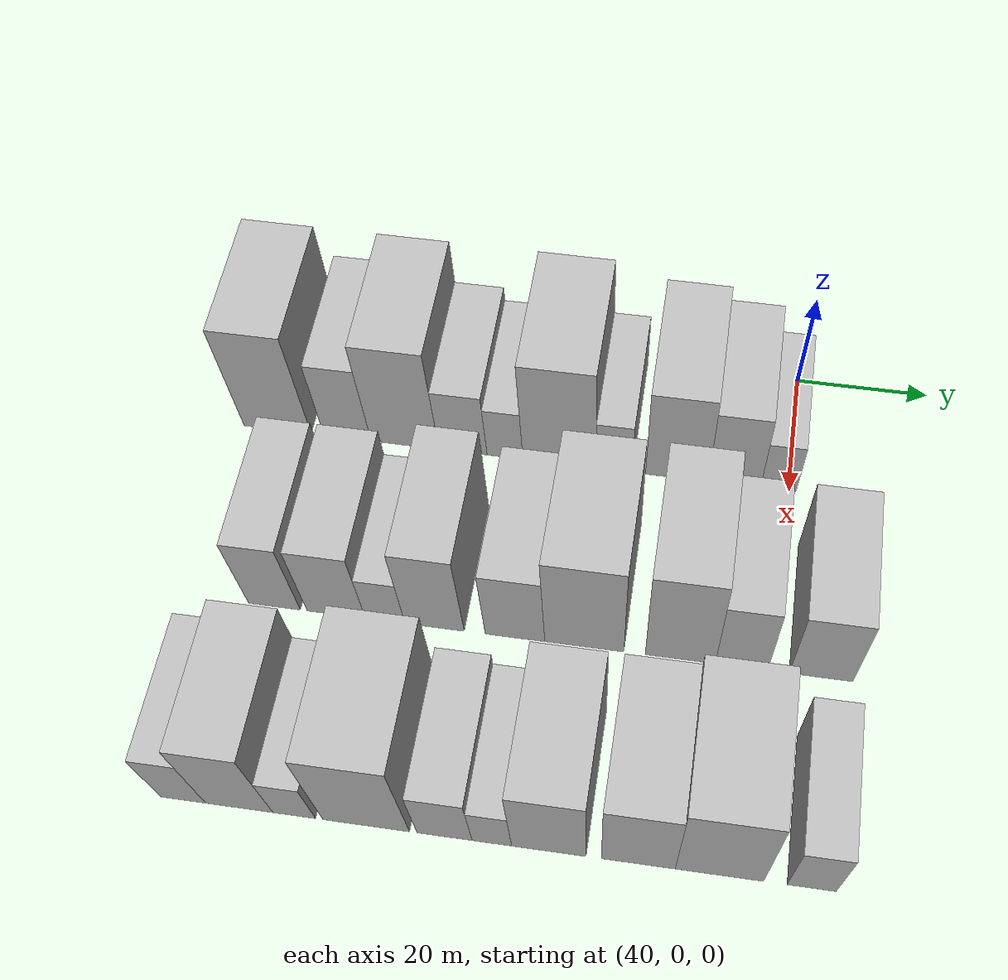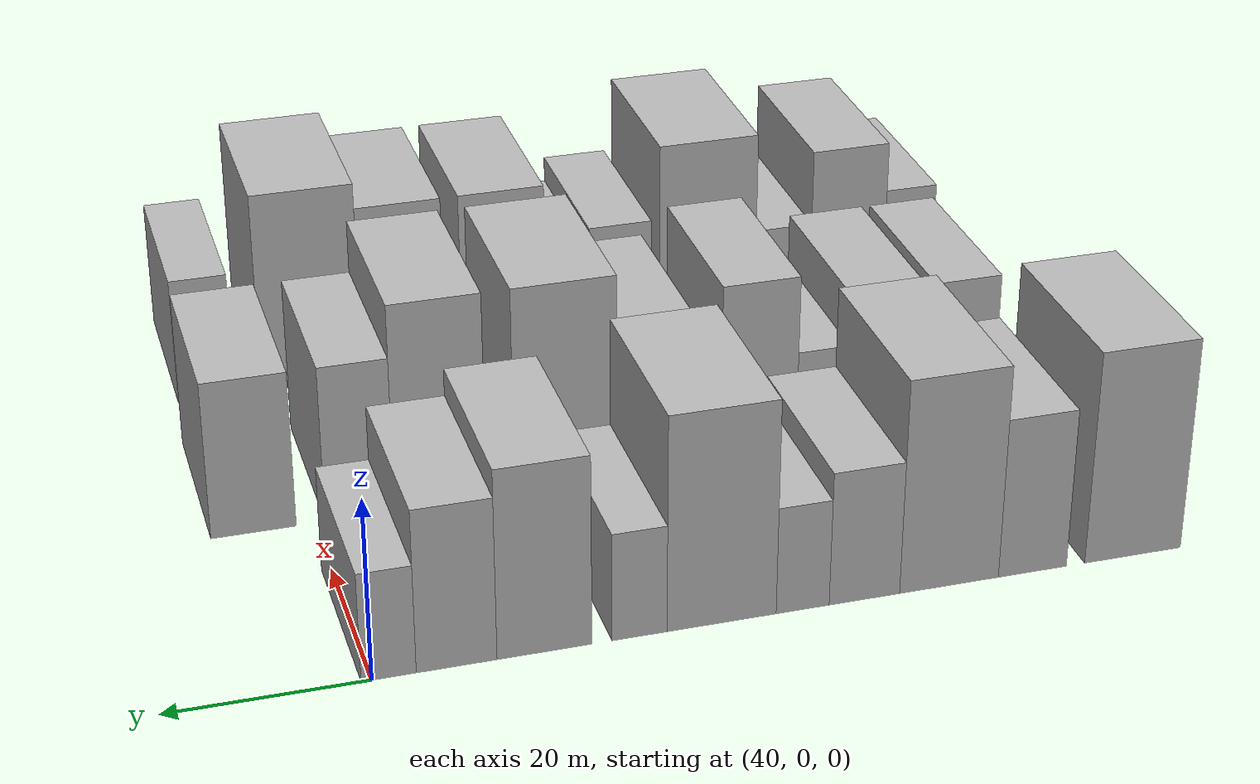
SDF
<sdf version="1.6">
 <world name="default">
  <model name="building_31">
   <static>1</static>
   <pose>50.0000 -78.0999 0 0.000000 0.000000 0.000000</pose>
   <link name="link">
    <pose>0 0 12.00 0 0 0</pose>
    <collision name="collision"><geometry><box><size>20.0000 10.5155 24.0000</size></box></geometry></collision>
    <visual name="visual">
     <cast_shadows>0</cast_shadows>
     <geometry><box><size>20.0000 10.5155 24.0000</size></box></geometry>
     <material>
      <script>
       <uri>model://HANNAS_wall/materials/scripts</uri>
       <uri>model://HANNAS_wall/materials/textures</uri>
       <name>vrc/HANNAS_wall</name>
      </script>
     </material>
    </visual>
   </link>
  </model>
  <model name="building_32">
   <static>1</static>
   <pose>50.0000 -67.1724 0 0.000000 0.000000 0.000000</pose>
   <link name="link">
    <pose>0 0 9.00 0 0 0</pose>
    <collision name="collision"><geometry><box><size>20.0000 7.3393 18.0000</size></box></geometry></collision>
    <visual name="visual">
     <cast_shadows>0</cast_shadows>
     <geometry><box><size>20.0000 7.3393 18.0000</size></box></geometry>
     <material>
      <script>
       <uri>model://HANNAS_wall/materials/scripts</uri>
       <uri>model://HANNAS_wall/materials/textures</uri>
       <name>vrc/HANNAS_wall</name>
      </script>
     </material>
    </visual>
   </link>
  </model>
  <model name="building_33">
   <static>1</static>
   <pose>50.0000 -58.2505 0 0.000000 0.000000 0.000000</pose>
   <link name="link">
    <pose>0 0 12.00 0 0 0</pose>
    <collision name="collision"><geometry><box><size>20.0000 10.5045 24.0000</size></box></geometry></collision>
    <visual name="visual">
     <cast_shadows>0</cast_shadows>
     <geometry><box><size>20.0000 10.5045 24.0000</size></box></geometry>
     <material>
      <script>
       <uri>model://HANNAS_wall/materials/scripts</uri>
       <uri>model://HANNAS_wall/materials/textures</uri>
       <name>vrc/HANNAS_wall</name>
      </script>
     </material>
    </visual>
   </link>
  </model>
  <model name="building_34">
   <static>1</static>
   <pose>50.0000 -49.3112 0 0.000000 0.000000 0.000000</pose>
   <link name="link">
    <pose>0 0 7.50 0 0 0</pose>
    <collision name="collision"><geometry><box><size>20.0000 7.3740 15.0000</size></box></geometry></collision>
    <visual name="visual">
     <cast_shadows>0</cast_shadows>
     <geometry><box><size>20.0000 7.3740 15.0000</size></box></geometry>
     <material>
      <script>
       <uri>model://HANNAS_wall/materials/scripts</uri>
       <uri>model://HANNAS_wall/materials/textures</uri>
       <name>vrc/HANNAS_wall</name>
      </script>
     </material>
    </visual>
   </link>
  </model>
  <model name="building_35">
   <static>1</static>
   <pose>50.0000 -42.8820 0 0.000000 0.000000 0.000000</pose>
   <link name="link">
    <pose>0 0 6.00 0 0 0</pose>
    <collision name="collision"><geometry><box><size>20.0000 5.4845 12.0000</size></box></geometry></collision>
    <visual name="visual">
     <cast_shadows>0</cast_shadows>
     <geometry><box><size>20.0000 5.4845 12.0000</size></box></geometry>
     <material>
      <script>
       <uri>model://HANNAS_wall/materials/scripts</uri>
       <uri>model://HANNAS_wall/materials/textures</uri>
       <name>vrc/HANNAS_wall</name>
      </script>
     </material>
    </visual>
   </link>
  </model>
  <model name="building_36">
   <static>1</static>
   <pose>50.0000 -34.5786 0 0.000000 0.000000 0.000000</pose>
   <link name="link">
    <pose>0 0 12.00 0 0 0</pose>
    <collision name="collision"><geometry><box><size>20.0000 11.1223 24.0000</size></box></geometry></collision>
    <visual name="visual">
     <cast_shadows>0</cast_shadows>
     <geometry><box><size>20.0000 11.1223 24.0000</size></box></geometry>
     <material>
      <script>
       <uri>model://HANNAS_wall/materials/scripts</uri>
       <uri>model://HANNAS_wall/materials/textures</uri>
       <name>vrc/HANNAS_wall</name>
      </script>
     </material>
    </visual>
   </link>
  </model>
  <model name="building_37">
   <static>1</static>
   <pose>50.0000 -26.2614 0 0.000000 0.000000 0.000000</pose>
   <link name="link">
    <pose>0 0 6.00 0 0 0</pose>
    <collision name="collision"><geometry><box><size>20.0000 5.5120 12.0000</size></box></geometry></collision>
    <visual name="visual">
     <cast_shadows>0</cast_shadows>
     <geometry><box><size>20.0000 5.5120 12.0000</size></box></geometry>
     <material>
      <script>
       <uri>model://HANNAS_wall/materials/scripts</uri>
       <uri>model://HANNAS_wall/materials/textures</uri>
       <name>vrc/HANNAS_wall</name>
      </script>
     </material>
    </visual>
   </link>
  </model>
  <model name="building_38">
   <static>1</static>
   <pose>50.0000 -16.8164 0 0.000000 0.000000 0.000000</pose>
   <link name="link">
    <pose>0 0 10.50 0 0 0</pose>
    <collision name="collision"><geometry><box><size>20.0000 9.3781 21.0000</size></box></geometry></collision>
    <visual name="visual">
     <cast_shadows>0</cast_shadows>
     <geometry><box><size>20.0000 9.3781 21.0000</size></box></geometry>
     <material>
      <script>
       <uri>model://HANNAS_wall/materials/scripts</uri>
       <uri>model://HANNAS_wall/materials/textures</uri>
       <name>vrc/HANNAS_wall</name>
      </script>
     </material>
    </visual>
   </link>
  </model>
  <model name="building_39">
   <static>1</static>
   <pose>50.0000 -8.2030 0 0.000000 0.000000 0.000000</pose>
   <link name="link">
    <pose>0 0 9.00 0 0 0</pose>
    <collision name="collision"><geometry><box><size>20.0000 7.8488 18.0000</size></box></geometry></collision>
    <visual name="visual">
     <cast_shadows>0</cast_shadows>
     <geometry><box><size>20.0000 7.8488 18.0000</size></box></geometry>
     <material>
      <script>
       <uri>model://HANNAS_wall/materials/scripts</uri>
       <uri>model://HANNAS_wall/materials/textures</uri>
       <name>vrc/HANNAS_wall</name>
      </script>
     </material>
    </visual>
   </link>
  </model>
  <model name="building_40">
   <static>1</static>
   <pose>50.0000 -1.6284 0 0.000000 0.000000 0.000000</pose>
   <link name="link">
    <pose>0 0 6.00 0 0 0</pose>
    <collision name="collision"><geometry><box><size>20.0000 5.3003 12.0000</size></box></geometry></collision>
    <visual name="visual">
     <cast_shadows>0</cast_shadows>
     <geometry><box><size>20.0000 5.3003 12.0000</size></box></geometry>
     <material>
      <script>
       <uri>model://HANNAS_wall/materials/scripts</uri>
       <uri>model://HANNAS_wall/materials/textures</uri>
       <name>vrc/HANNAS_wall</name>
      </script>
     </material>
    </visual>
   </link>
  </model>
  <model name="building_114">
   <static>1</static>
   <pose>79.0000 -71.1362 0 0.000000 0.000000 0.000000</pose>
   <link name="link">
    <pose>0 0 9.00 0 0 0</pose>
    <collision name="collision"><geometry><box><size>20.0000 7.5188 18.0000</size></box></geometry></collision>
    <visual name="visual">
     <cast_shadows>0</cast_shadows>
     <geometry><box><size>20.0000 7.5188 18.0000</size></box></geometry>
     <material>
      <script>
       <uri>model://HANNAS_wall/materials/scripts</uri>
       <uri>model://HANNAS_wall/materials/textures</uri>
       <name>vrc/HANNAS_wall</name>
      </script>
     </material>
    </visual>
   </link>
  </model>
  <model name="building_115">
   <static>1</static>
   <pose>79.0000 -62.1459 0 0.000000 0.000000 0.000000</pose>
   <link name="link">
    <pose>0 0 9.00 0 0 0</pose>
    <collision name="collision"><geometry><box><size>20.0000 8.4619 18.0000</size></box></geometry></collision>
    <visual name="visual">
     <cast_shadows>0</cast_shadows>
     <geometry><box><size>20.0000 8.4619 18.0000</size></box></geometry>
     <material>
      <script>
       <uri>model://HANNAS_wall/materials/scripts</uri>
       <uri>model://HANNAS_wall/materials/textures</uri>
       <name>vrc/HANNAS_wall</name>
      </script>
     </material>
    </visual>
   </link>
  </model>
  <model name="building_116">
   <static>1</static>
   <pose>79.0000 -55.0690 0 0.000000 0.000000 0.000000</pose>
   <link name="link">
    <pose>0 0 6.00 0 0 0</pose>
    <collision name="collision"><geometry><box><size>20.0000 5.6919 12.0000</size></box></geometry></collision>
    <visual name="visual">
     <cast_shadows>0</cast_shadows>
     <geometry><box><size>20.0000 5.6919 12.0000</size></box></geometry>
     <material>
      <script>
       <uri>model://HANNAS_wall/materials/scripts</uri>
       <uri>model://HANNAS_wall/materials/textures</uri>
       <name>vrc/HANNAS_wall</name>
      </script>
     </material>
    </visual>
   </link>
  </model>
  <model name="building_117">
   <static>1</static>
   <pose>79.0000 -47.9793 0 0.000000 0.000000 0.000000</pose>
   <link name="link">
    <pose>0 0 10.50 0 0 0</pose>
    <collision name="collision"><geometry><box><size>20.0000 8.4876 21.0000</size></box></geometry></collision>
    <visual name="visual">
     <cast_shadows>0</cast_shadows>
     <geometry><box><size>20.0000 8.4876 21.0000</size></box></geometry>
     <material>
      <script>
       <uri>model://HANNAS_wall/materials/scripts</uri>
       <uri>model://HANNAS_wall/materials/textures</uri>
       <name>vrc/HANNAS_wall</name>
      </script>
     </material>
    </visual>
   </link>
  </model>
  <model name="building_118">
   <static>1</static>
   <pose>79.0000 -36.5077 0 0.000000 0.000000 0.000000</pose>
   <link name="link">
    <pose>0 0 9.00 0 0 0</pose>
    <collision name="collision"><geometry><box><size>20.0000 8.4556 18.0000</size></box></geometry></collision>
    <visual name="visual">
     <cast_shadows>0</cast_shadows>
     <geometry><box><size>20.0000 8.4556 18.0000</size></box></geometry>
     <material>
      <script>
       <uri>model://HANNAS_wall/materials/scripts</uri>
       <uri>model://HANNAS_wall/materials/textures</uri>
       <name>vrc/HANNAS_wall</name>
      </script>
     </material>
    </visual>
   </link>
  </model>
  <model name="building_119">
   <static>1</static>
   <pose>79.0000 -26.6929 0 0.000000 0.000000 0.000000</pose>
   <link name="link">
    <pose>0 0 12.00 0 0 0</pose>
    <collision name="collision"><geometry><box><size>20.0000 11.1740 24.0000</size></box></geometry></collision>
    <visual name="visual">
     <cast_shadows>0</cast_shadows>
     <geometry><box><size>20.0000 11.1740 24.0000</size></box></geometry>
     <material>
      <script>
       <uri>model://HANNAS_wall/materials/scripts</uri>
       <uri>model://HANNAS_wall/materials/textures</uri>
       <name>vrc/HANNAS_wall</name>
      </script>
     </material>
    </visual>
   </link>
  </model>
  <model name="building_120">
   <static>1</static>
   <pose>79.0000 -13.2150 0 0.000000 0.000000 0.000000</pose>
   <link name="link">
    <pose>0 0 12.00 0 0 0</pose>
    <collision name="collision"><geometry><box><size>20.0000 9.7818 24.0000</size></box></geometry></collision>
    <visual name="visual">
     <cast_shadows>0</cast_shadows>
     <geometry><box><size>20.0000 9.7818 24.0000</size></box></geometry>
     <material>
      <script>
       <uri>model://HANNAS_wall/materials/scripts</uri>
       <uri>model://HANNAS_wall/materials/textures</uri>
       <name>vrc/HANNAS_wall</name>
      </script>
     </material>
    </visual>
   </link>
  </model>
  <model name="building_121">
   <static>1</static>
   <pose>79.0000 -4.6803 0 0.000000 0.000000 0.000000</pose>
   <link name="link">
    <pose>0 0 9.00 0 0 0</pose>
    <collision name="collision"><geometry><box><size>20.0000 7.2876 18.0000</size></box></geometry></collision>
    <visual name="visual">
     <cast_shadows>0</cast_shadows>
     <geometry><box><size>20.0000 7.2876 18.0000</size></box></geometry>
     <material>
      <script>
       <uri>model://HANNAS_wall/materials/scripts</uri>
       <uri>model://HANNAS_wall/materials/textures</uri>
       <name>vrc/HANNAS_wall</name>
      </script>
     </material>
    </visual>
   </link>
  </model>
  <model name="building_122">
   <static>1</static>
   <pose>79.0000 6.3690 0 0.000000 0.000000 0.000000</pose>
   <link name="link">
    <pose>0 0 9.00 0 0 0</pose>
    <collision name="collision"><geometry><box><size>20.0000 8.8111 18.0000</size></box></geometry></collision>
    <visual name="visual">
     <cast_shadows>0</cast_shadows>
     <geometry><box><size>20.0000 8.8111 18.0000</size></box></geometry>
     <material>
      <script>
       <uri>model://HANNAS_wall/materials/scripts</uri>
       <uri>model://HANNAS_wall/materials/textures</uri>
       <name>vrc/HANNAS_wall</name>
      </script>
     </material>
    </visual>
   </link>
  </model>
  <model name="building_182">
   <static>1</static>
   <pose>108.0000 -76.0505 0 0.000000 0.000000 0.000000</pose>
   <link name="link">
    <pose>0 0 7.50 0 0 0</pose>
    <collision name="collision"><geometry><box><size>20.0000 6.1076 15.0000</size></box></geometry></collision>
    <visual name="visual">
     <cast_shadows>0</cast_shadows>
     <geometry><box><size>20.0000 6.1076 15.0000</size></box></geometry>
     <material>
      <script>
       <uri>model://HANNAS_wall/materials/scripts</uri>
       <uri>model://HANNAS_wall/materials/textures</uri>
       <name>vrc/HANNAS_wall</name>
      </script>
     </material>
    </visual>
   </link>
  </model>
  <model name="building_183">
   <static>1</static>
   <pose>108.0000 -68.4397 0 0.000000 0.000000 0.000000</pose>
   <link name="link">
    <pose>0 0 10.50 0 0 0</pose>
    <collision name="collision"><geometry><box><size>20.0000 9.1141 21.0000</size></box></geometry></collision>
    <visual name="visual">
     <cast_shadows>0</cast_shadows>
     <geometry><box><size>20.0000 9.1141 21.0000</size></box></geometry>
     <material>
      <script>
       <uri>model://HANNAS_wall/materials/scripts</uri>
       <uri>model://HANNAS_wall/materials/textures</uri>
       <name>vrc/HANNAS_wall</name>
      </script>
     </material>
    </visual>
   </link>
  </model>
  <model name="building_184">
   <static>1</static>
   <pose>108.0000 -61.0206 0 0.000000 0.000000 0.000000</pose>
   <link name="link">
    <pose>0 0 6.00 0 0 0</pose>
    <collision name="collision"><geometry><box><size>20.0000 5.7240 12.0000</size></box></geometry></collision>
    <visual name="visual">
     <cast_shadows>0</cast_shadows>
     <geometry><box><size>20.0000 5.7240 12.0000</size></box></geometry>
     <material>
      <script>
       <uri>model://HANNAS_wall/materials/scripts</uri>
       <uri>model://HANNAS_wall/materials/textures</uri>
       <name>vrc/HANNAS_wall</name>
      </script>
     </material>
    </visual>
   </link>
  </model>
  <model name="building_185">
   <static>1</static>
   <pose>108.0000 -51.3815 0 0.000000 0.000000 0.000000</pose>
   <link name="link">
    <pose>0 0 12.00 0 0 0</pose>
    <collision name="collision"><geometry><box><size>20.0000 11.5541 24.0000</size></box></geometry></collision>
    <visual name="visual">
     <cast_shadows>0</cast_shadows>
     <geometry><box><size>20.0000 11.5541 24.0000</size></box></geometry>
     <material>
      <script>
       <uri>model://HANNAS_wall/materials/scripts</uri>
       <uri>model://HANNAS_wall/materials/textures</uri>
       <name>vrc/HANNAS_wall</name>
      </script>
     </material>
    </visual>
   </link>
  </model>
  <model name="building_186">
   <static>1</static>
   <pose>108.0000 -40.9542 0 0.000000 0.000000 0.000000</pose>
   <link name="link">
    <pose>0 0 7.50 0 0 0</pose>
    <collision name="collision"><geometry><box><size>20.0000 7.3006 15.0000</size></box></geometry></collision>
    <visual name="visual">
     <cast_shadows>0</cast_shadows>
     <geometry><box><size>20.0000 7.3006 15.0000</size></box></geometry>
     <material>
      <script>
       <uri>model://HANNAS_wall/materials/scripts</uri>
       <uri>model://HANNAS_wall/materials/textures</uri>
       <name>vrc/HANNAS_wall</name>
      </script>
     </material>
    </visual>
   </link>
  </model>
  <model name="building_187">
   <static>1</static>
   <pose>108.0000 -34.7030 0 0.000000 0.000000 0.000000</pose>
   <link name="link">
    <pose>0 0 6.00 0 0 0</pose>
    <collision name="collision"><geometry><box><size>20.0000 5.2017 12.0000</size></box></geometry></collision>
    <visual name="visual">
     <cast_shadows>0</cast_shadows>
     <geometry><box><size>20.0000 5.2017 12.0000</size></box></geometry>
     <material>
      <script>
       <uri>model://HANNAS_wall/materials/scripts</uri>
       <uri>model://HANNAS_wall/materials/textures</uri>
       <name>vrc/HANNAS_wall</name>
      </script>
     </material>
    </visual>
   </link>
  </model>
  <model name="building_188">
   <static>1</static>
   <pose>108.0000 -27.2263 0 0.000000 0.000000 0.000000</pose>
   <link name="link">
    <pose>0 0 10.50 0 0 0</pose>
    <collision name="collision"><geometry><box><size>20.0000 9.7518 21.0000</size></box></geometry></collision>
    <visual name="visual">
     <cast_shadows>0</cast_shadows>
     <geometry><box><size>20.0000 9.7518 21.0000</size></box></geometry>
     <material>
      <script>
       <uri>model://HANNAS_wall/materials/scripts</uri>
       <uri>model://HANNAS_wall/materials/textures</uri>
       <name>vrc/HANNAS_wall</name>
      </script>
     </material>
    </visual>
   </link>
  </model>
  <model name="building_189">
   <static>1</static>
   <pose>108.0000 -15.5471 0 0.000000 0.000000 0.000000</pose>
   <link name="link">
    <pose>0 0 10.50 0 0 0</pose>
    <collision name="collision"><geometry><box><size>20.0000 9.6064 21.0000</size></box></geometry></collision>
    <visual name="visual">
     <cast_shadows>0</cast_shadows>
     <geometry><box><size>20.0000 9.6064 21.0000</size></box></geometry>
     <material>
      <script>
       <uri>model://HANNAS_wall/materials/scripts</uri>
       <uri>model://HANNAS_wall/materials/textures</uri>
       <name>vrc/HANNAS_wall</name>
      </script>
     </material>
    </visual>
   </link>
  </model>
  <model name="building_190">
   <static>1</static>
   <pose>108.0000 -5.0466 0 0.000000 0.000000 0.000000</pose>
   <link name="link">
    <pose>0 0 12.00 0 0 0</pose>
    <collision name="collision"><geometry><box><size>20.0000 11.3946 24.0000</size></box></geometry></collision>
    <visual name="visual">
     <cast_shadows>0</cast_shadows>
     <geometry><box><size>20.0000 11.3946 24.0000</size></box></geometry>
     <material>
      <script>
       <uri>model://HANNAS_wall/materials/scripts</uri>
       <uri>model://HANNAS_wall/materials/textures</uri>
       <name>vrc/HANNAS_wall</name>
      </script>
     </material>
    </visual>
   </link>
  </model>
  <model name="building_191">
   <static>1</static>
   <pose>108.0000 6.7974 0 0.000000 0.000000 0.000000</pose>
   <link name="link">
    <pose>0 0 7.50 0 0 0</pose>
    <collision name="collision"><geometry><box><size>20.0000 6.2934 15.0000</size></box></geometry></collision>
    <visual name="visual">
     <cast_shadows>0</cast_shadows>
     <geometry><box><size>20.0000 6.2934 15.0000</size></box></geometry>
     <material>
      <script>
       <uri>model://HANNAS_wall/materials/scripts</uri>
       <uri>model://HANNAS_wall/materials/textures</uri>
       <name>vrc/HANNAS_wall</name>
      </script>
     </material>
    </visual>
   </link>
  </model>
 </world>
</sdf>
